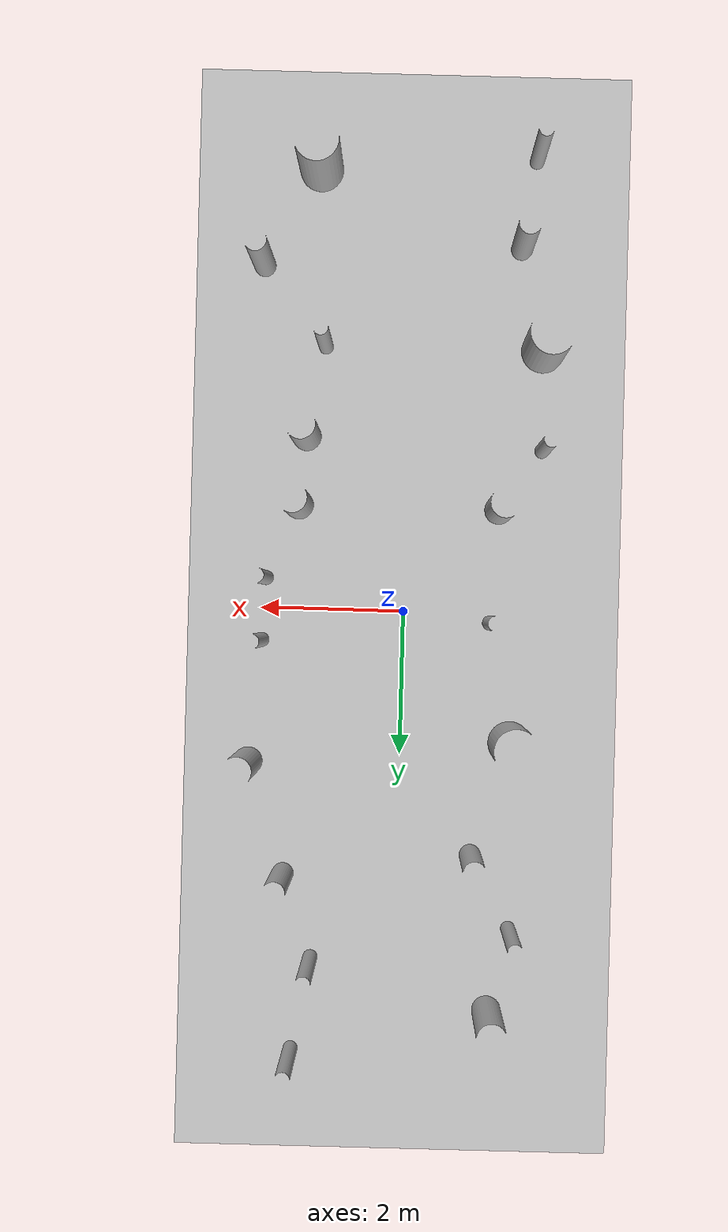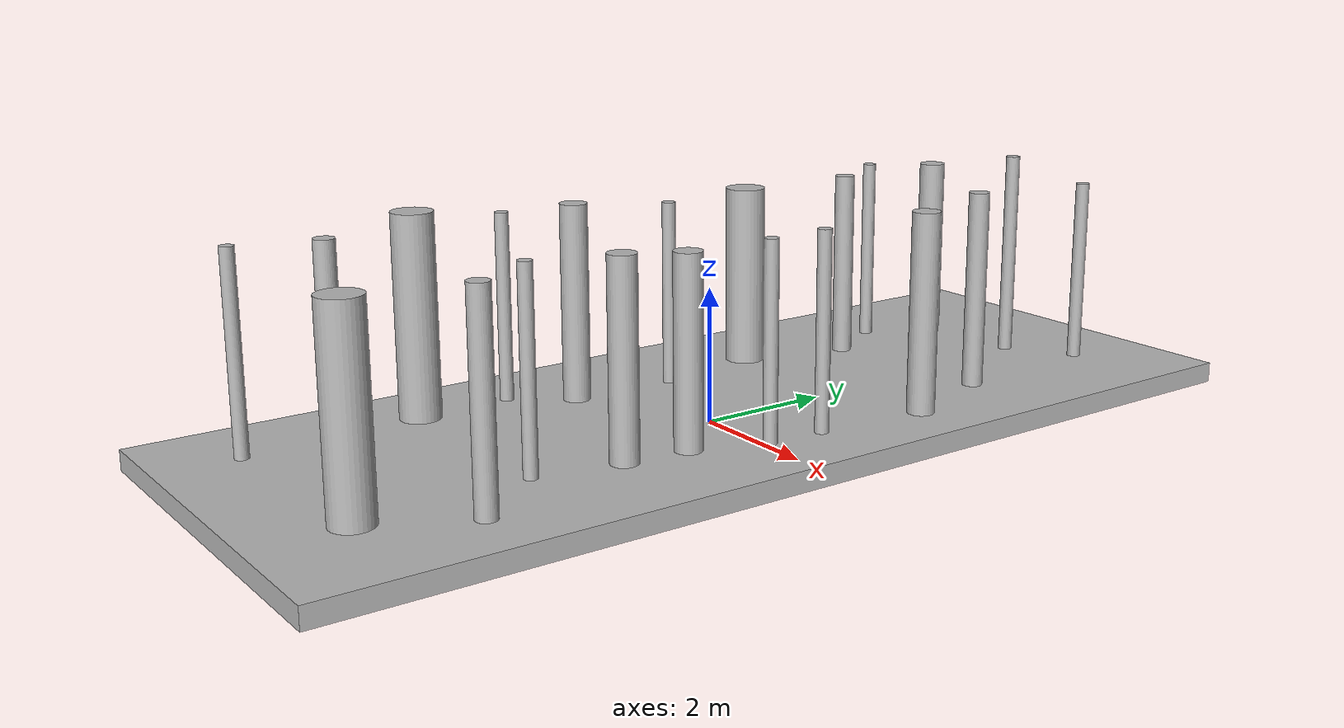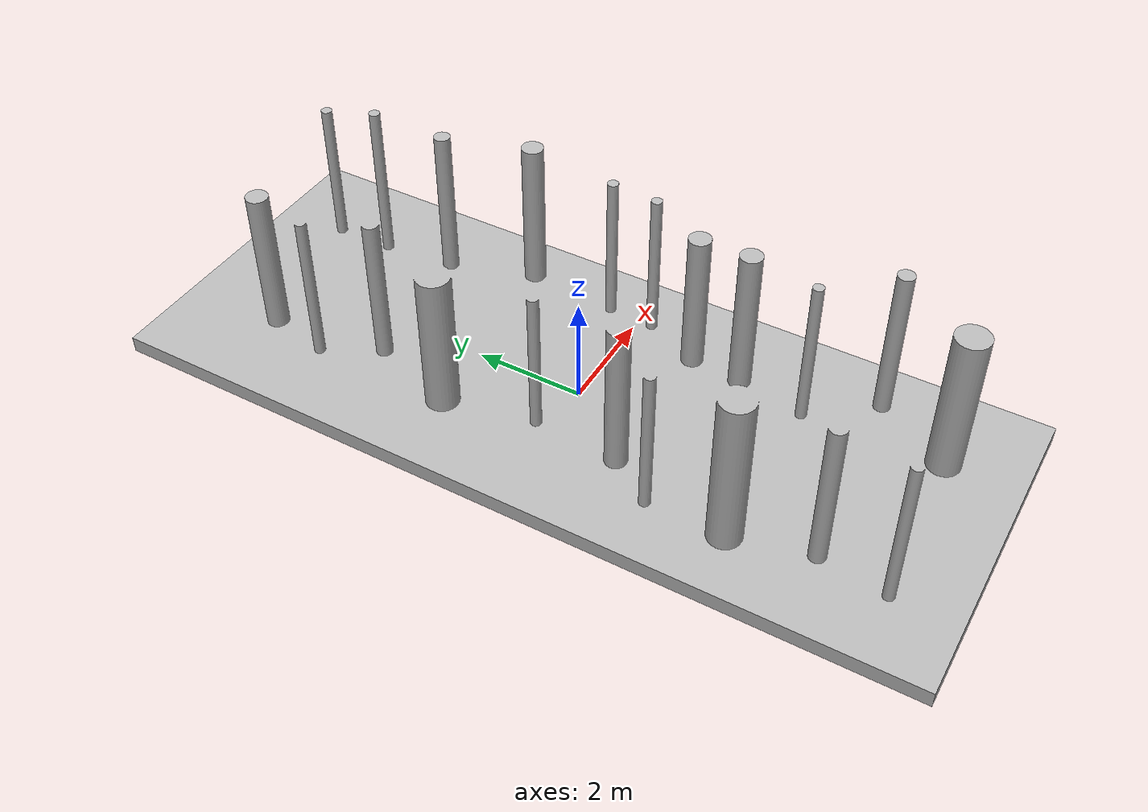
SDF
<?xml version="1.0" ?>
<sdf version="1.5">
  <model name="flat_tree_terrain">
    <pose>0 0 0 0 0 0</pose>
    <static>true</static>
    <link name="body">
      <visual name="visual">
        <geometry>
          <mesh><uri>model://turtlebot3_world/meshes/flat_tree_terrain.dae</uri></mesh>
        </geometry>
        <material>
           <script>
             <uri>model://turtlebot3_world/media/scripts</uri>
             <uri>model://turtlebot3_world/media/Textures</uri>
             <name>RepeatedGrass/Diffuse</name>
           </script>
         </material>
      </visual>

      <collision name="collision">
        <geometry>
          <mesh><uri>model://turtlebot3_world/meshes/flat_tree_terrain.dae</uri></mesh>
        </geometry>
      </collision>
    </link>
  </model>
</sdf>
